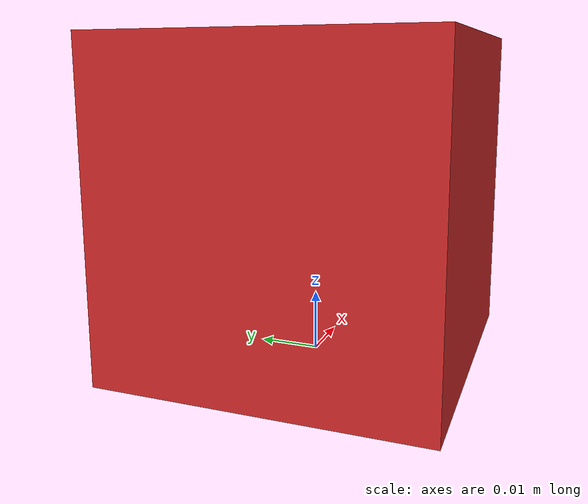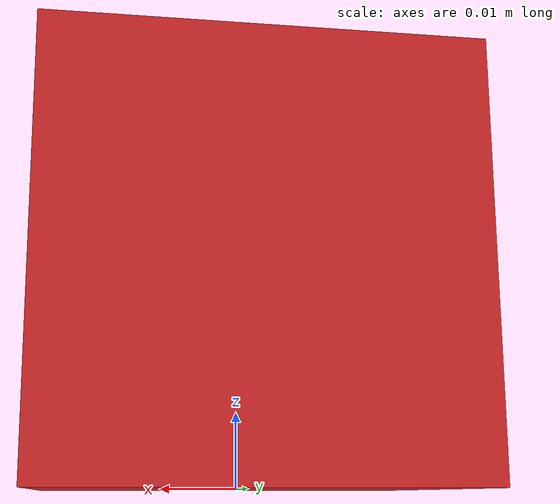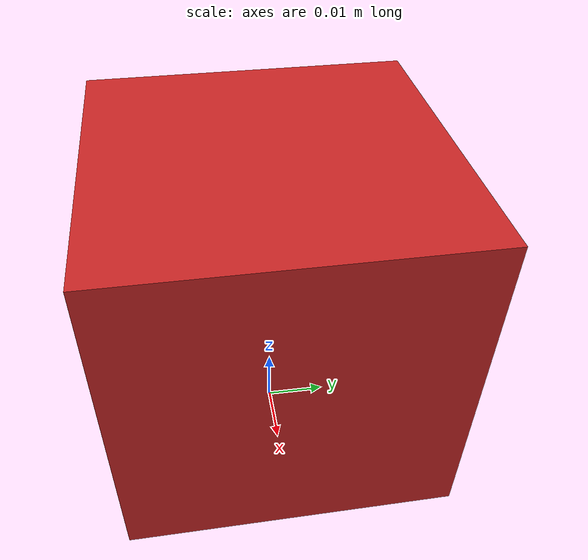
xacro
<?xml version="1.0"?>
<robot name="cube" xmlns:xacro="http://www.ros.org/wiki/xacro">

  <xacro:include filename="$(find world_model_data)/data/models/xacro/common.xacro"/>

  <xacro:macro name="cube" params="name length width height
                                   color *origin">

    <link name="${name}-base">
    <visual>
      <origin rpy="0 0 0" xyz="0 0 ${height/2.}"/>
      <geometry>
        <box size="${length} ${width} ${height}"/>
      </geometry>
    </visual>
    <collision>
      <origin rpy="0 0 0" xyz="0 0 ${height/2.}"/>
      <geometry>
        <box size="${length} ${width} ${height}"/>
      </geometry>
    </collision>
    <inertial>
      <origin rpy="0 0 0" xyz="0.0 0.0 ${height/2.}"/>
      <mass value="0.3"/>
      <inertia ixx="0.1" ixy="0.01" ixz="0.01" iyy="0.1" iyz="0.01" izz="0.1"/>
    </inertial>
    </link>

    <gazebo reference="${name}-base">
      <material>Gazebo/${color}</material>
      <kp>1000000.0</kp>
      <kd>1.0</kd>
      <mu1>1.1</mu1>
      <mu2>1.1</mu2>
      <minDepth>0.001</minDepth>
    </gazebo>

  </xacro:macro>

  <xacro:arg name="name" default="o1"/>
  <xacro:arg name="length" default="0.053"/>
  <xacro:arg name="width" default="0.053"/>
  <xacro:arg name="height" default="0.053"/>
  <xacro:arg name="color" default="Red"/>
  <xacro:arg name="xyz" default="0 0 0"/>
  <xacro:arg name="rpy" default="0 0 0"/>

  <xacro:cube name="$(arg name)"
              length="$(arg length)" width="$(arg width)"
              height="$(arg height)" color="$(arg color)">
      <origin xyz="$(arg xyz)" rpy="$(arg rpy)" />
  </xacro:cube>

</robot>
